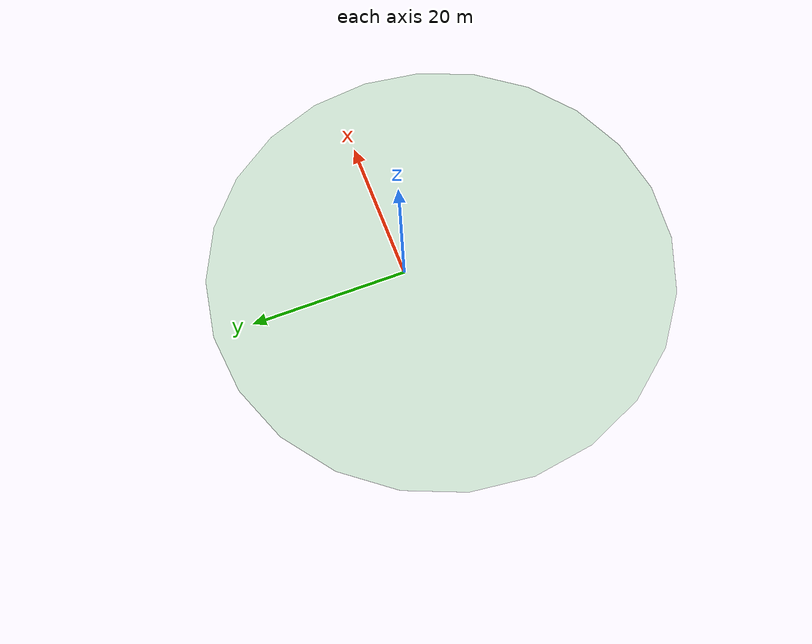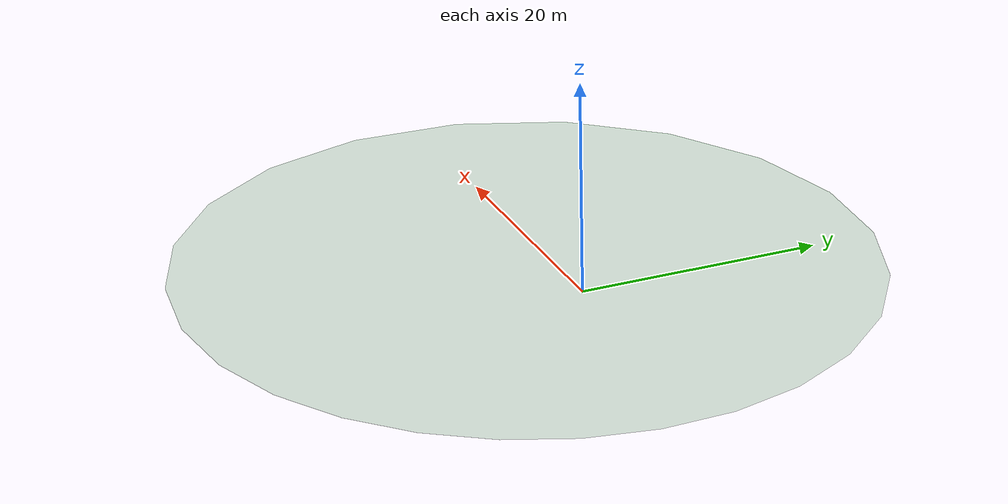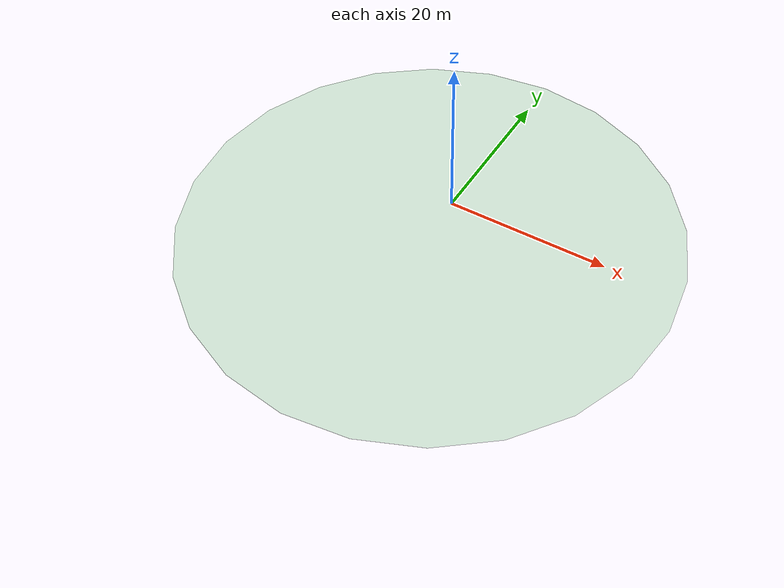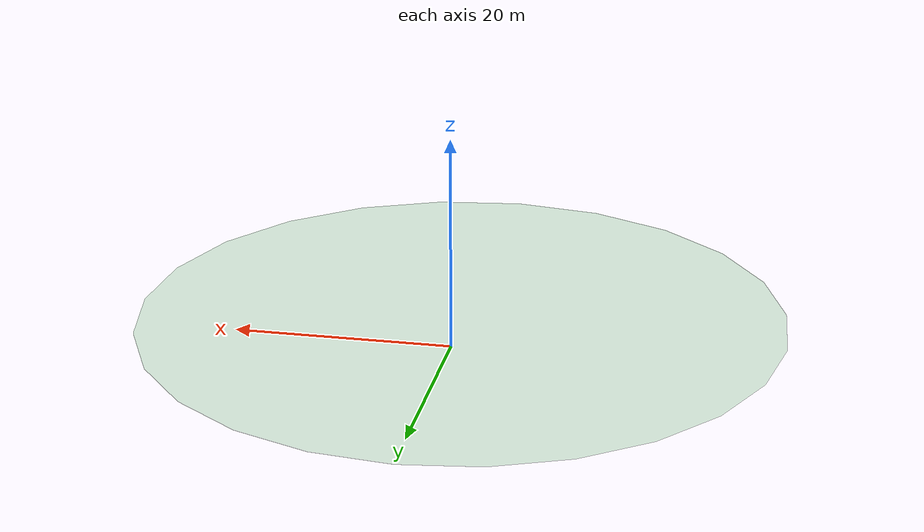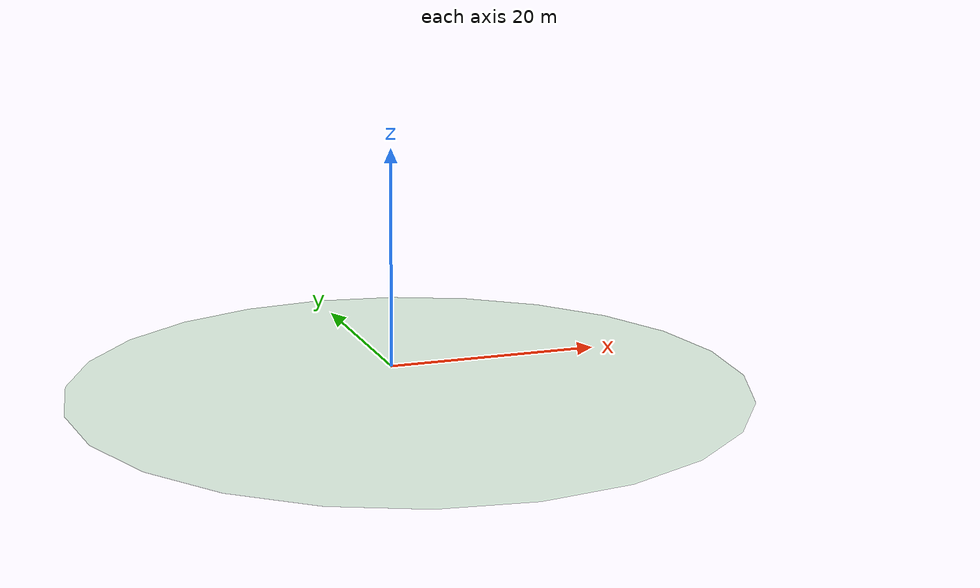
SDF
<?xml version="1.0" ?>
<sdf version="1.5">
  <model name="Target_2s1">
    <static>true</static>
    <link name="red">
      <pose>0 -5 0.04 0 0 0</pose>
      <visual name="visual">
        <geometry>
          <cylinder>
              <radius>30</radius>
              <length>0.1</length>
          </cylinder>
        </geometry>
        <material>
          <script>
            <uri>file://media/materials/scripts/gazebo.material</uri>
            <name>Gazebo/Green</name>
          </script>
        </material>
        <cast_shadows>1</cast_shadows>
        <transparency>0.8</transparency>
      </visual>
    </link>
  </model>
</sdf>
